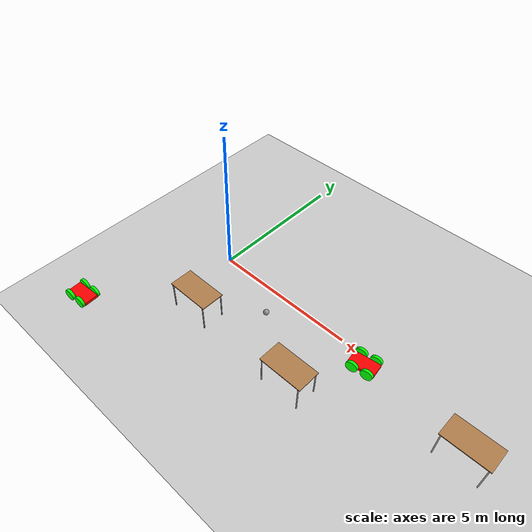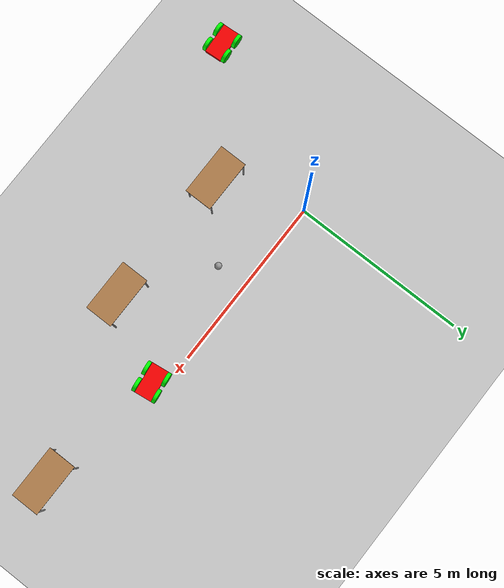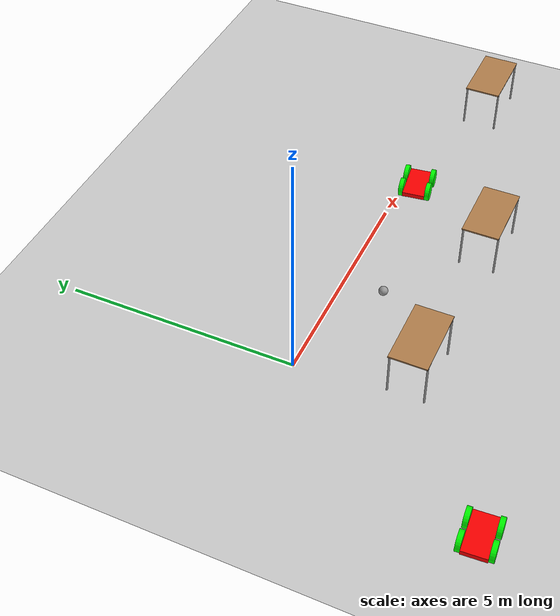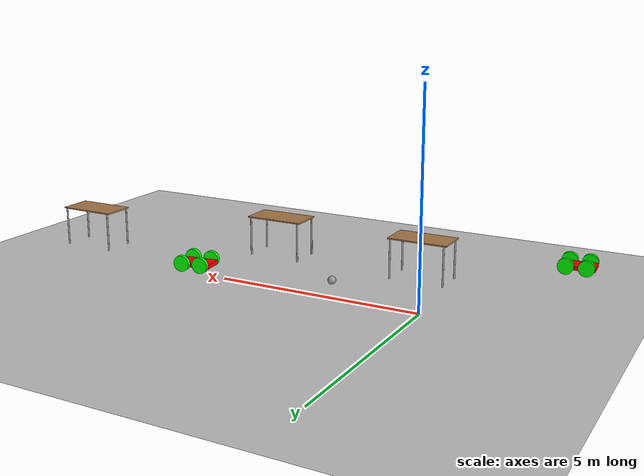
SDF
<sdf version="1.6">
 <world name="default">
  <model name="ground_plane">
   <static>1</static>
   <link name="link">
    <collision name="collision">
     <geometry><plane><normal>0 0 1</normal><size>100 100</size></plane></geometry>
     <surface><friction><ode><mu>100</mu><mu2>50</mu2></ode></friction></surface>
    </collision>
    <visual name="visual">
     <cast_shadows>0</cast_shadows>
     <geometry><plane><normal>0 0 1</normal><size>100 100</size></plane></geometry>
     <material>
      <script><uri>file://media/materials/scripts/gazebo.material</uri><name>Gazebo/Grey</name></script>
     </material>
    </visual>
   </link>
  </model>
  <model name="table">
   <static>1</static>
   <link name="link">
    <collision name="surface">
     <pose>0 0 1 0 -0 0</pose>
     <geometry><box><size>1.5 0.8 0.03</size></box></geometry>
     <surface><friction><ode><mu>0.6</mu><mu2>0.6</mu2></ode></friction></surface>
    </collision>
    <visual name="visual1">
     <pose>0 0 1 0 -0 0</pose>
     <geometry><box><size>1.5 0.8 0.03</size></box></geometry>
     <material>
      <script><uri>file://media/materials/scripts/gazebo.material</uri><name>Gazebo/Wood</name></script>
     </material>
    </visual>
    <collision name="front_left_leg">
     <pose>0.68 0.38 0.5 0 -0 0</pose>
     <geometry><cylinder><radius>0.02</radius><length>1</length></cylinder></geometry>
    </collision>
    <visual name="front_left_leg">
     <pose>0.68 0.38 0.5 0 -0 0</pose>
     <geometry><cylinder><radius>0.02</radius><length>1</length></cylinder></geometry>
     <material>
      <script><uri>file://media/materials/scripts/gazebo.material</uri><name>Gazebo/Grey</name></script>
     </material>
    </visual>
    <collision name="front_right_leg">
     <pose>0.68 -0.38 0.5 0 -0 0</pose>
     <geometry><cylinder><radius>0.02</radius><length>1</length></cylinder></geometry>
    </collision>
    <visual name="front_right_leg">
     <pose>0.68 -0.38 0.5 0 -0 0</pose>
     <geometry><cylinder><radius>0.02</radius><length>1</length></cylinder></geometry>
     <material>
      <script><uri>file://media/materials/scripts/gazebo.material</uri><name>Gazebo/Grey</name></script>
     </material>
    </visual>
    <collision name="back_right_leg">
     <pose>-0.68 -0.38 0.5 0 -0 0</pose>
     <geometry><cylinder><radius>0.02</radius><length>1</length></cylinder></geometry>
    </collision>
    <visual name="back_right_leg">
     <pose>-0.68 -0.38 0.5 0 -0 0</pose>
     <geometry><cylinder><radius>0.02</radius><length>1</length></cylinder></geometry>
     <material>
      <script><uri>file://media/materials/scripts/gazebo.material</uri><name>Gazebo/Grey</name></script>
     </material>
    </visual>
    <collision name="back_left_leg">
     <pose>-0.68 0.38 0.5 0 -0 0</pose>
     <geometry><cylinder><radius>0.02</radius><length>1</length></cylinder></geometry>
    </collision>
    <visual name="back_left_leg">
     <pose>-0.68 0.38 0.5 0 -0 0</pose>
     <geometry><cylinder><radius>0.02</radius><length>1</length></cylinder></geometry>
     <material>
      <script><uri>file://media/materials/scripts/gazebo.material</uri><name>Gazebo/Grey</name></script>
     </material>
    </visual>
   </link>
   <pose>9.67368 -0.862444 0 0 -0 0</pose>
  </model>
  <model name="table_1">
   <static>1</static>
   <link name="link">
    <collision name="surface">
     <pose>0 0 1 0 -0 0</pose>
     <geometry><box><size>1.5 0.8 0.03</size></box></geometry>
     <surface><friction><ode><mu>0.6</mu><mu2>0.6</mu2></ode></friction></surface>
    </collision>
    <visual name="visual1">
     <pose>0 0 1 0 -0 0</pose>
     <geometry><box><size>1.5 0.8 0.03</size></box></geometry>
     <material>
      <script><uri>file://media/materials/scripts/gazebo.material</uri><name>Gazebo/Wood</name></script>
     </material>
    </visual>
    <collision name="front_left_leg">
     <pose>0.68 0.38 0.5 0 -0 0</pose>
     <geometry><cylinder><radius>0.02</radius><length>1</length></cylinder></geometry>
    </collision>
    <visual name="front_left_leg">
     <pose>0.68 0.38 0.5 0 -0 0</pose>
     <geometry><cylinder><radius>0.02</radius><length>1</length></cylinder></geometry>
     <material>
      <script><uri>file://media/materials/scripts/gazebo.material</uri><name>Gazebo/Grey</name></script>
     </material>
    </visual>
    <collision name="front_right_leg">
     <pose>0.68 -0.38 0.5 0 -0 0</pose>
     <geometry><cylinder><radius>0.02</radius><length>1</length></cylinder></geometry>
    </collision>
    <visual name="front_right_leg">
     <pose>0.68 -0.38 0.5 0 -0 0</pose>
     <geometry><cylinder><radius>0.02</radius><length>1</length></cylinder></geometry>
     <material>
      <script><uri>file://media/materials/scripts/gazebo.material</uri><name>Gazebo/Grey</name></script>
     </material>
    </visual>
    <collision name="back_right_leg">
     <pose>-0.68 -0.38 0.5 0 -0 0</pose>
     <geometry><cylinder><radius>0.02</radius><length>1</length></cylinder></geometry>
    </collision>
    <visual name="back_right_leg">
     <pose>-0.68 -0.38 0.5 0 -0 0</pose>
     <geometry><cylinder><radius>0.02</radius><length>1</length></cylinder></geometry>
     <material>
      <script><uri>file://media/materials/scripts/gazebo.material</uri><name>Gazebo/Grey</name></script>
     </material>
    </visual>
    <collision name="back_left_leg">
     <pose>-0.68 0.38 0.5 0 -0 0</pose>
     <geometry><cylinder><radius>0.02</radius><length>1</length></cylinder></geometry>
    </collision>
    <visual name="back_left_leg">
     <pose>-0.68 0.38 0.5 0 -0 0</pose>
     <geometry><cylinder><radius>0.02</radius><length>1</length></cylinder></geometry>
     <material>
      <script><uri>file://media/materials/scripts/gazebo.material</uri><name>Gazebo/Grey</name></script>
     </material>
    </visual>
   </link>
   <pose>0.877917 -2.27792 0 0 -0 0</pose>
  </model>
  <model name="table_2">
   <static>1</static>
   <link name="link">
    <collision name="surface">
     <pose>0 0 1 0 -0 0</pose>
     <geometry><box><size>1.5 0.8 0.03</size></box></geometry>
     <surface><friction><ode><mu>0.6</mu><mu2>0.6</mu2></ode></friction></surface>
    </collision>
    <visual name="visual1">
     <pose>0 0 1 0 -0 0</pose>
     <geometry><box><size>1.5 0.8 0.03</size></box></geometry>
     <material>
      <script><uri>file://media/materials/scripts/gazebo.material</uri><name>Gazebo/Wood</name></script>
     </material>
    </visual>
    <collision name="front_left_leg">
     <pose>0.68 0.38 0.5 0 -0 0</pose>
     <geometry><cylinder><radius>0.02</radius><length>1</length></cylinder></geometry>
    </collision>
    <visual name="front_left_leg">
     <pose>0.68 0.38 0.5 0 -0 0</pose>
     <geometry><cylinder><radius>0.02</radius><length>1</length></cylinder></geometry>
     <material>
      <script><uri>file://media/materials/scripts/gazebo.material</uri><name>Gazebo/Grey</name></script>
     </material>
    </visual>
    <collision name="front_right_leg">
     <pose>0.68 -0.38 0.5 0 -0 0</pose>
     <geometry><cylinder><radius>0.02</radius><length>1</length></cylinder></geometry>
    </collision>
    <visual name="front_right_leg">
     <pose>0.68 -0.38 0.5 0 -0 0</pose>
     <geometry><cylinder><radius>0.02</radius><length>1</length></cylinder></geometry>
     <material>
      <script><uri>file://media/materials/scripts/gazebo.material</uri><name>Gazebo/Grey</name></script>
     </material>
    </visual>
    <collision name="back_right_leg">
     <pose>-0.68 -0.38 0.5 0 -0 0</pose>
     <geometry><cylinder><radius>0.02</radius><length>1</length></cylinder></geometry>
    </collision>
    <visual name="back_right_leg">
     <pose>-0.68 -0.38 0.5 0 -0 0</pose>
     <geometry><cylinder><radius>0.02</radius><length>1</length></cylinder></geometry>
     <material>
      <script><uri>file://media/materials/scripts/gazebo.material</uri><name>Gazebo/Grey</name></script>
     </material>
    </visual>
    <collision name="back_left_leg">
     <pose>-0.68 0.38 0.5 0 -0 0</pose>
     <geometry><cylinder><radius>0.02</radius><length>1</length></cylinder></geometry>
    </collision>
    <visual name="back_left_leg">
     <pose>-0.68 0.38 0.5 0 -0 0</pose>
     <geometry><cylinder><radius>0.02</radius><length>1</length></cylinder></geometry>
     <material>
      <script><uri>file://media/materials/scripts/gazebo.material</uri><name>Gazebo/Grey</name></script>
     </material>
    </visual>
   </link>
   <pose>4.8441 -2.38743 0 0 -0 0</pose>
  </model>
  <model name="newrobo">
   <link name="link_0">
    <pose>-0.020707 0.020259 0.5 0 -0 0</pose>
    <inertial>
     <mass>1</mass>
     <inertia>
      <ixx>0.166667</ixx>
      <ixy>0</ixy>
      <ixz>0</ixz>
      <iyy>0.166667</iyy>
      <iyz>0</iyz>
      <izz>0.166667</izz>
     </inertia>
     <pose>0 0 0.2 0 -0 0</pose>
    </inertial>
    <visual name="visual">
     <geometry><box><size>0.9 0.5 0.1</size></box></geometry>
     <material>
      <lighting>1</lighting>
      <script><uri>file://media/materials/scripts/gazebo.material</uri><name>Gazebo/Grey</name></script>
      <shader type="pixel"><normal_map>__default__</normal_map></shader>
      <ambient>1 0 0 1</ambient>
      <diffuse>1 0 0 1</diffuse>
      <specular>1 0 1 1</specular>
      <emissive>1 0 0 1</emissive>
     </material>
    </visual>
    <collision name="collision">
     <geometry><box><size>0.9 0.5 0.1</size></box></geometry>
     <surface>
      <friction>
       <ode><mu>1</mu><mu2>1</mu2><fdir1>0 0 0</fdir1><slip1>0</slip1><slip2>0</slip2></ode>
       <torsional>
        <coefficient>1</coefficient>
        <patch_radius>0</patch_radius>
        <surface_radius>0</surface_radius>
        <use_patch_radius>1</use_patch_radius>
        <ode><slip>0</slip></ode>
       </torsional>
      </friction>
      <bounce><restitution_coefficient>0</restitution_coefficient><threshold>1e+06</threshold></bounce>
      <contact>
       <collide_without_contact>0</collide_without_contact>
       <collide_without_contact_bitmask>1</collide_without_contact_bitmask>
       <collide_bitmask>1</collide_bitmask>
       <ode>
        <soft_cfm>0</soft_cfm>
        <soft_erp>0.2</soft_erp>
        <kp>1e+13</kp>
        <kd>1</kd>
        <max_vel>0.01</max_vel>
        <min_depth>0</min_depth>
       </ode>
       <bullet>
        <split_impulse>1</split_impulse>
        <split_impulse_penetration_threshold>-0.01</split_impulse_penetration_threshold>
        <soft_cfm>0</soft_cfm>
        <soft_erp>0.2</soft_erp>
        <kp>1e+13</kp>
        <kd>1</kd>
       </bullet>
      </contact>
     </surface>
    </collision>
   </link>
   <link name="link_1">
    <pose>0.229293 -0.27976 0.544996 1.5707 -0 0</pose>
    <inertial>
     <mass>1</mass>
     <inertia><ixx>0.145833</ixx><ixy>0</ixy><ixz>0</ixz><iyy>0.145833</iyy><iyz>0</iyz><izz>0.125</izz></inertia>
    </inertial>
    <visual name="visual">
     <geometry><cylinder><radius>0.2</radius><length>0.1</length></cylinder></geometry>
     <material>
      <lighting>1</lighting>
      <script><uri>file://media/materials/scripts/gazebo.material</uri><name>Gazebo/Grey</name></script>
      <shader type="pixel"><normal_map>__default__</normal_map></shader>
      <ambient>0 1 0 1</ambient>
      <diffuse>0 1 0 1</diffuse>
      <specular>0 1 0 1</specular>
      <emissive>0 1 0 1</emissive>
     </material>
    </visual>
    <collision name="collision">
     <geometry><cylinder><radius>0.2</radius><length>0.1</length></cylinder></geometry>
     <surface>
      <friction>
       <ode><mu>1</mu><mu2>1</mu2><fdir1>0 0 0</fdir1><slip1>0</slip1><slip2>0</slip2></ode>
       <torsional>
        <coefficient>1</coefficient>
        <patch_radius>0</patch_radius>
        <surface_radius>0</surface_radius>
        <use_patch_radius>1</use_patch_radius>
        <ode><slip>0</slip></ode>
       </torsional>
      </friction>
      <bounce><restitution_coefficient>0</restitution_coefficient><threshold>1e+06</threshold></bounce>
      <contact>
       <collide_without_contact>0</collide_without_contact>
       <collide_without_contact_bitmask>1</collide_without_contact_bitmask>
       <collide_bitmask>1</collide_bitmask>
       <ode>
        <soft_cfm>0</soft_cfm>
        <soft_erp>0.2</soft_erp>
        <kp>1e+13</kp>
        <kd>1</kd>
        <max_vel>0.01</max_vel>
        <min_depth>0</min_depth>
       </ode>
       <bullet>
        <split_impulse>1</split_impulse>
        <split_impulse_penetration_threshold>-0.01</split_impulse_penetration_threshold>
        <soft_cfm>0</soft_cfm>
        <soft_erp>0.2</soft_erp>
        <kp>1e+13</kp>
        <kd>1</kd>
       </bullet>
      </contact>
     </surface>
    </collision>
   </link>
   <link name="link_1_clone">
    <pose>0.229293 0.320278 0.545 1.5707 -0 0</pose>
    <inertial>
     <mass>1</mass>
     <inertia><ixx>0.145833</ixx><ixy>0</ixy><ixz>0</ixz><iyy>0.145833</iyy><iyz>0</iyz><izz>0.125</izz></inertia>
    </inertial>
    <visual name="visual">
     <geometry><cylinder><radius>0.2</radius><length>0.1</length></cylinder></geometry>
     <material>
      <lighting>1</lighting>
      <script><uri>file://media/materials/scripts/gazebo.material</uri><name>Gazebo/Grey</name></script>
      <shader type="pixel"><normal_map>__default__</normal_map></shader>
      <ambient>0 1 0 1</ambient>
      <diffuse>0 1 0 1</diffuse>
      <specular>0 1 0 1</specular>
      <emissive>0 1 0 1</emissive>
     </material>
    </visual>
    <collision name="collision">
     <geometry><cylinder><radius>0.2</radius><length>0.1</length></cylinder></geometry>
     <surface>
      <friction>
       <ode><mu>1</mu><mu2>1</mu2><fdir1>0 0 0</fdir1><slip1>0</slip1><slip2>0</slip2></ode>
       <torsional>
        <coefficient>1</coefficient>
        <patch_radius>0</patch_radius>
        <surface_radius>0</surface_radius>
        <use_patch_radius>1</use_patch_radius>
        <ode><slip>0</slip></ode>
       </torsional>
      </friction>
      <bounce><restitution_coefficient>0</restitution_coefficient><threshold>1e+06</threshold></bounce>
      <contact>
       <collide_without_contact>0</collide_without_contact>
       <collide_without_contact_bitmask>1</collide_without_contact_bitmask>
       <collide_bitmask>1</collide_bitmask>
       <ode>
        <soft_cfm>0</soft_cfm>
        <soft_erp>0.2</soft_erp>
        <kp>1e+13</kp>
        <kd>1</kd>
        <max_vel>0.01</max_vel>
        <min_depth>0</min_depth>
       </ode>
       <bullet>
        <split_impulse>1</split_impulse>
        <split_impulse_penetration_threshold>-0.01</split_impulse_penetration_threshold>
        <soft_cfm>0</soft_cfm>
        <soft_erp>0.2</soft_erp>
        <kp>1e+13</kp>
        <kd>1</kd>
       </bullet>
      </contact>
     </surface>
    </collision>
   </link>
   <link name="link_1_clone_0">
    <pose>-0.270707 0.320278 0.545 1.5707 -0 0</pose>
    <inertial>
     <mass>1</mass>
     <inertia><ixx>0.145833</ixx><ixy>0</ixy><ixz>0</ixz><iyy>0.145833</iyy><iyz>0</iyz><izz>0.125</izz></inertia>
    </inertial>
    <visual name="visual">
     <geometry><cylinder><radius>0.2</radius><length>0.1</length></cylinder></geometry>
     <material>
      <lighting>1</lighting>
      <script><uri>file://media/materials/scripts/gazebo.material</uri><name>Gazebo/Grey</name></script>
      <shader type="pixel"><normal_map>__default__</normal_map></shader>
      <ambient>0 1 0 1</ambient>
      <diffuse>0 1 0 1</diffuse>
      <specular>0 1 0 1</specular>
      <emissive>0 1 0 1</emissive>
     </material>
    </visual>
    <collision name="collision">
     <geometry><cylinder><radius>0.2</radius><length>0.1</length></cylinder></geometry>
     <surface>
      <friction>
       <ode><mu>1</mu><mu2>1</mu2><fdir1>0 0 0</fdir1><slip1>0</slip1><slip2>0</slip2></ode>
       <torsional>
        <coefficient>1</coefficient>
        <patch_radius>0</patch_radius>
        <surface_radius>0</surface_radius>
        <use_patch_radius>1</use_patch_radius>
        <ode><slip>0</slip></ode>
       </torsional>
      </friction>
      <bounce><restitution_coefficient>0</restitution_coefficient><threshold>1e+06</threshold></bounce>
      <contact>
       <collide_without_contact>0</collide_without_contact>
       <collide_without_contact_bitmask>1</collide_without_contact_bitmask>
       <collide_bitmask>1</collide_bitmask>
       <ode>
        <soft_cfm>0</soft_cfm>
        <soft_erp>0.2</soft_erp>
        <kp>1e+13</kp>
        <kd>1</kd>
        <max_vel>0.01</max_vel>
        <min_depth>0</min_depth>
       </ode>
       <bullet>
        <split_impulse>1</split_impulse>
        <split_impulse_penetration_threshold>-0.01</split_impulse_penetration_threshold>
        <soft_cfm>0</soft_cfm>
        <soft_erp>0.2</soft_erp>
        <kp>1e+13</kp>
        <kd>1</kd>
       </bullet>
      </contact>
     </surface>
    </collision>
   </link>
   <link name="link_1_clone_1">
    <pose>-0.270707 -0.27976 0.545 1.5707 -0 0</pose>
    <inertial>
     <mass>1</mass>
     <inertia><ixx>0.145833</ixx><ixy>0</ixy><ixz>0</ixz><iyy>0.145833</iyy><iyz>0</iyz><izz>0.125</izz></inertia>
    </inertial>
    <visual name="visual">
     <geometry><cylinder><radius>0.2</radius><length>0.1</length></cylinder></geometry>
     <material>
      <lighting>1</lighting>
      <script><uri>file://media/materials/scripts/gazebo.material</uri><name>Gazebo/Grey</name></script>
      <shader type="pixel"><normal_map>__default__</normal_map></shader>
      <ambient>0 1 0 1</ambient>
      <diffuse>0 1 0 1</diffuse>
      <specular>0 1 0 1</specular>
      <emissive>0 1 0 1</emissive>
     </material>
    </visual>
    <collision name="collision">
     <geometry><cylinder><radius>0.2</radius><length>0.1</length></cylinder></geometry>
     <surface>
      <friction>
       <ode><mu>1</mu><mu2>1</mu2><fdir1>0 0 0</fdir1><slip1>0</slip1><slip2>0</slip2></ode>
       <torsional>
        <coefficient>1</coefficient>
        <patch_radius>0</patch_radius>
        <surface_radius>0</surface_radius>
        <use_patch_radius>1</use_patch_radius>
        <ode><slip>0</slip></ode>
       </torsional>
      </friction>
      <bounce><restitution_coefficient>0</restitution_coefficient><threshold>1e+06</threshold></bounce>
      <contact>
       <collide_without_contact>0</collide_without_contact>
       <collide_without_contact_bitmask>1</collide_without_contact_bitmask>
       <collide_bitmask>1</collide_bitmask>
       <ode>
        <soft_cfm>0</soft_cfm>
        <soft_erp>0.2</soft_erp>
        <kp>1e+13</kp>
        <kd>1</kd>
        <max_vel>0.01</max_vel>
        <min_depth>0</min_depth>
       </ode>
       <bullet>
        <split_impulse>1</split_impulse>
        <split_impulse_penetration_threshold>-0.01</split_impulse_penetration_threshold>
        <soft_cfm>0</soft_cfm>
        <soft_erp>0.2</soft_erp>
        <kp>1e+13</kp>
        <kd>1</kd>
       </bullet>
      </contact>
     </surface>
    </collision>
   </link>
   <joint name="link_0_JOINT_0" type="revolute">
    <parent>link_0</parent>
    <child>link_1</child>
    <axis>
     <xyz>0 0 1</xyz>
     <use_parent_model_frame>0</use_parent_model_frame>
     <limit>
      <lower>-1.79769e+308</lower>
      <upper>1.79769e+308</upper>
      <effort>-1</effort>
      <velocity>-1</velocity>
     </limit>
     <dynamics>
      <spring_reference>0</spring_reference>
      <spring_stiffness>0</spring_stiffness>
      <damping>0</damping>
      <friction>0</friction>
     </dynamics>
    </axis>
    <physics>
     <ode><limit><cfm>0</cfm><erp>0.2</erp></limit><suspension><cfm>0</cfm><erp>0.2</erp></suspension></ode>
    </physics>
   </joint>
   <joint name="link_0_JOINT_1" type="revolute">
    <parent>link_0</parent>
    <child>link_1_clone_1</child>
    <axis>
     <xyz>1 0 0</xyz>
     <use_parent_model_frame>0</use_parent_model_frame>
     <limit>
      <lower>-1.79769e+308</lower>
      <upper>1.79769e+308</upper>
      <effort>-1</effort>
      <velocity>-1</velocity>
     </limit>
     <dynamics>
      <spring_reference>0</spring_reference>
      <spring_stiffness>0</spring_stiffness>
      <damping>0</damping>
      <friction>0</friction>
     </dynamics>
    </axis>
    <physics>
     <ode><limit><cfm>0</cfm><erp>0.2</erp></limit><suspension><cfm>0</cfm><erp>0.2</erp></suspension></ode>
    </physics>
   </joint>
   <joint name="link_0_JOINT_2" type="revolute">
    <parent>link_0</parent>
    <child>link_1_clone</child>
    <axis>
     <xyz>0 0 1</xyz>
     <use_parent_model_frame>0</use_parent_model_frame>
     <limit>
      <lower>-1.79769e+308</lower>
      <upper>1.79769e+308</upper>
      <effort>-1</effort>
      <velocity>-1</velocity>
     </limit>
     <dynamics>
      <spring_reference>0</spring_reference>
      <spring_stiffness>0</spring_stiffness>
      <damping>0</damping>
      <friction>0</friction>
     </dynamics>
    </axis>
    <physics>
     <ode><limit><cfm>0</cfm><erp>0.2</erp></limit><suspension><cfm>0</cfm><erp>0.2</erp></suspension></ode>
    </physics>
   </joint>
   <joint name="link_0_JOINT_4" type="revolute">
    <parent>link_0</parent>
    <child>link_1_clone</child>
    <axis>
     <xyz>0 0 1</xyz>
     <use_parent_model_frame>0</use_parent_model_frame>
     <limit>
      <lower>-1.79769e+308</lower>
      <upper>1.79769e+308</upper>
      <effort>-1</effort>
      <velocity>-1</velocity>
     </limit>
     <dynamics>
      <spring_reference>0</spring_reference>
      <spring_stiffness>0</spring_stiffness>
      <damping>0</damping>
      <friction>0</friction>
     </dynamics>
    </axis>
    <physics>
     <ode><limit><cfm>0</cfm><erp>0.2</erp></limit><suspension><cfm>0</cfm><erp>0.2</erp></suspension></ode>
    </physics>
   </joint>
   <joint name="link_0_JOINT_5" type="revolute">
    <parent>link_0</parent>
    <child>link_1_clone_0</child>
    <axis>
     <xyz>0 0 1</xyz>
     <use_parent_model_frame>0</use_parent_model_frame>
     <limit>
      <lower>-1.79769e+308</lower>
      <upper>1.79769e+308</upper>
      <effort>-1</effort>
      <velocity>-1</velocity>
     </limit>
     <dynamics>
      <spring_reference>0</spring_reference>
      <spring_stiffness>0</spring_stiffness>
      <damping>0</damping>
      <friction>0</friction>
     </dynamics>
    </axis>
    <physics>
     <ode><limit><cfm>0</cfm><erp>0.2</erp></limit><suspension><cfm>0</cfm><erp>0.2</erp></suspension></ode>
    </physics>
   </joint>
   <joint name="link_0_JOINT_6" type="revolute">
    <parent>link_0</parent>
    <child>link_1_clone_1</child>
    <axis>
     <xyz>0 0 1</xyz>
     <use_parent_model_frame>0</use_parent_model_frame>
     <limit>
      <lower>-1.79769e+308</lower>
      <upper>1.79769e+308</upper>
      <effort>-1</effort>
      <velocity>-1</velocity>
     </limit>
     <dynamics>
      <spring_reference>0</spring_reference>
      <spring_stiffness>0</spring_stiffness>
      <damping>0</damping>
      <friction>0</friction>
     </dynamics>
    </axis>
    <physics>
     <ode><limit><cfm>0</cfm><erp>0.2</erp></limit><suspension><cfm>0</cfm><erp>0.2</erp></suspension></ode>
    </physics>
   </joint>
   <joint name="link_0_JOINT_7" type="revolute">
    <parent>link_0</parent>
    <child>link_1</child>
    <axis>
     <xyz>0 0 1</xyz>
     <use_parent_model_frame>0</use_parent_model_frame>
     <limit>
      <lower>-1.79769e+308</lower>
      <upper>1.79769e+308</upper>
      <effort>-1</effort>
      <velocity>-1</velocity>
     </limit>
     <dynamics>
      <spring_reference>0</spring_reference>
      <spring_stiffness>0</spring_stiffness>
      <damping>0</damping>
      <friction>0</friction>
     </dynamics>
    </axis>
    <physics>
     <ode><limit><cfm>0</cfm><erp>0.2</erp></limit><suspension><cfm>0</cfm><erp>0.2</erp></suspension></ode>
    </physics>
   </joint>
   <joint name="link_0_JOINT_8" type="revolute">
    <parent>link_0</parent>
    <child>link_1_clone_1</child>
    <axis>
     <xyz>0 0 1</xyz>
     <use_parent_model_frame>0</use_parent_model_frame>
     <limit>
      <lower>-1.79769e+308</lower>
      <upper>1.79769e+308</upper>
      <effort>-1</effort>
      <velocity>-1</velocity>
     </limit>
     <dynamics>
      <spring_reference>0</spring_reference>
      <spring_stiffness>0</spring_stiffness>
      <damping>0</damping>
      <friction>0</friction>
     </dynamics>
    </axis>
    <physics>
     <ode><limit><cfm>0</cfm><erp>0.2</erp></limit><suspension><cfm>0</cfm><erp>0.2</erp></suspension></ode>
    </physics>
   </joint>
   <static>0</static>
   <pose>6.08888 -0.358677 -0.344993 -4e-06 -3e-06 0.130032</pose>
  </model>
  <model name="newrobo_0">
   <link name="link_0">
    <pose>-0.020707 0.020259 0.5 0 -0 0</pose>
    <inertial>
     <mass>1</mass>
     <inertia>
      <ixx>0.166667</ixx>
      <ixy>0</ixy>
      <ixz>0</ixz>
      <iyy>0.166667</iyy>
      <iyz>0</iyz>
      <izz>0.166667</izz>
     </inertia>
     <pose>0 0 0.2 0 -0 0</pose>
    </inertial>
    <visual name="visual">
     <geometry><box><size>0.9 0.5 0.1</size></box></geometry>
     <material>
      <lighting>1</lighting>
      <script><uri>file://media/materials/scripts/gazebo.material</uri><name>Gazebo/Grey</name></script>
      <shader type="pixel"><normal_map>__default__</normal_map></shader>
      <ambient>1 0 0 1</ambient>
      <diffuse>1 0 0 1</diffuse>
      <specular>1 0 1 1</specular>
      <emissive>1 0 0 1</emissive>
     </material>
    </visual>
    <collision name="collision">
     <geometry><box><size>0.9 0.5 0.1</size></box></geometry>
     <surface>
      <friction>
       <ode><mu>1</mu><mu2>1</mu2><fdir1>0 0 0</fdir1><slip1>0</slip1><slip2>0</slip2></ode>
       <torsional>
        <coefficient>1</coefficient>
        <patch_radius>0</patch_radius>
        <surface_radius>0</surface_radius>
        <use_patch_radius>1</use_patch_radius>
        <ode><slip>0</slip></ode>
       </torsional>
      </friction>
      <bounce><restitution_coefficient>0</restitution_coefficient><threshold>1e+06</threshold></bounce>
      <contact>
       <collide_without_contact>0</collide_without_contact>
       <collide_without_contact_bitmask>1</collide_without_contact_bitmask>
       <collide_bitmask>1</collide_bitmask>
       <ode>
        <soft_cfm>0</soft_cfm>
        <soft_erp>0.2</soft_erp>
        <kp>1e+13</kp>
        <kd>1</kd>
        <max_vel>0.01</max_vel>
        <min_depth>0</min_depth>
       </ode>
       <bullet>
        <split_impulse>1</split_impulse>
        <split_impulse_penetration_threshold>-0.01</split_impulse_penetration_threshold>
        <soft_cfm>0</soft_cfm>
        <soft_erp>0.2</soft_erp>
        <kp>1e+13</kp>
        <kd>1</kd>
       </bullet>
      </contact>
     </surface>
    </collision>
   </link>
   <link name="link_1">
    <pose>0.229293 -0.27976 0.544996 1.5707 -0 0</pose>
    <inertial>
     <mass>1</mass>
     <inertia><ixx>0.145833</ixx><ixy>0</ixy><ixz>0</ixz><iyy>0.145833</iyy><iyz>0</iyz><izz>0.125</izz></inertia>
    </inertial>
    <visual name="visual">
     <geometry><cylinder><radius>0.2</radius><length>0.1</length></cylinder></geometry>
     <material>
      <lighting>1</lighting>
      <script><uri>file://media/materials/scripts/gazebo.material</uri><name>Gazebo/Grey</name></script>
      <shader type="pixel"><normal_map>__default__</normal_map></shader>
      <ambient>0 1 0 1</ambient>
      <diffuse>0 1 0 1</diffuse>
      <specular>0 1 0 1</specular>
      <emissive>0 1 0 1</emissive>
     </material>
    </visual>
    <collision name="collision">
     <geometry><cylinder><radius>0.2</radius><length>0.1</length></cylinder></geometry>
     <surface>
      <friction>
       <ode><mu>1</mu><mu2>1</mu2><fdir1>0 0 0</fdir1><slip1>0</slip1><slip2>0</slip2></ode>
       <torsional>
        <coefficient>1</coefficient>
        <patch_radius>0</patch_radius>
        <surface_radius>0</surface_radius>
        <use_patch_radius>1</use_patch_radius>
        <ode><slip>0</slip></ode>
       </torsional>
      </friction>
      <bounce><restitution_coefficient>0</restitution_coefficient><threshold>1e+06</threshold></bounce>
      <contact>
       <collide_without_contact>0</collide_without_contact>
       <collide_without_contact_bitmask>1</collide_without_contact_bitmask>
       <collide_bitmask>1</collide_bitmask>
       <ode>
        <soft_cfm>0</soft_cfm>
        <soft_erp>0.2</soft_erp>
        <kp>1e+13</kp>
        <kd>1</kd>
        <max_vel>0.01</max_vel>
        <min_depth>0</min_depth>
       </ode>
       <bullet>
        <split_impulse>1</split_impulse>
        <split_impulse_penetration_threshold>-0.01</split_impulse_penetration_threshold>
        <soft_cfm>0</soft_cfm>
        <soft_erp>0.2</soft_erp>
        <kp>1e+13</kp>
        <kd>1</kd>
       </bullet>
      </contact>
     </surface>
    </collision>
   </link>
   <link name="link_1_clone">
    <pose>0.229293 0.320278 0.545 1.5707 -0 0</pose>
    <inertial>
     <mass>1</mass>
     <inertia><ixx>0.145833</ixx><ixy>0</ixy><ixz>0</ixz><iyy>0.145833</iyy><iyz>0</iyz><izz>0.125</izz></inertia>
    </inertial>
    <visual name="visual">
     <geometry><cylinder><radius>0.2</radius><length>0.1</length></cylinder></geometry>
     <material>
      <lighting>1</lighting>
      <script><uri>file://media/materials/scripts/gazebo.material</uri><name>Gazebo/Grey</name></script>
      <shader type="pixel"><normal_map>__default__</normal_map></shader>
      <ambient>0 1 0 1</ambient>
      <diffuse>0 1 0 1</diffuse>
      <specular>0 1 0 1</specular>
      <emissive>0 1 0 1</emissive>
     </material>
    </visual>
    <collision name="collision">
     <geometry><cylinder><radius>0.2</radius><length>0.1</length></cylinder></geometry>
     <surface>
      <friction>
       <ode><mu>1</mu><mu2>1</mu2><fdir1>0 0 0</fdir1><slip1>0</slip1><slip2>0</slip2></ode>
       <torsional>
        <coefficient>1</coefficient>
        <patch_radius>0</patch_radius>
        <surface_radius>0</surface_radius>
        <use_patch_radius>1</use_patch_radius>
        <ode><slip>0</slip></ode>
       </torsional>
      </friction>
      <bounce><restitution_coefficient>0</restitution_coefficient><threshold>1e+06</threshold></bounce>
      <contact>
       <collide_without_contact>0</collide_without_contact>
       <collide_without_contact_bitmask>1</collide_without_contact_bitmask>
       <collide_bitmask>1</collide_bitmask>
       <ode>
        <soft_cfm>0</soft_cfm>
        <soft_erp>0.2</soft_erp>
        <kp>1e+13</kp>
        <kd>1</kd>
        <max_vel>0.01</max_vel>
        <min_depth>0</min_depth>
       </ode>
       <bullet>
        <split_impulse>1</split_impulse>
        <split_impulse_penetration_threshold>-0.01</split_impulse_penetration_threshold>
        <soft_cfm>0</soft_cfm>
        <soft_erp>0.2</soft_erp>
        <kp>1e+13</kp>
        <kd>1</kd>
       </bullet>
      </contact>
     </surface>
    </collision>
   </link>
   <link name="link_1_clone_0">
    <pose>-0.270707 0.320278 0.545 1.5707 -0 0</pose>
    <inertial>
     <mass>1</mass>
     <inertia><ixx>0.145833</ixx><ixy>0</ixy><ixz>0</ixz><iyy>0.145833</iyy><iyz>0</iyz><izz>0.125</izz></inertia>
    </inertial>
    <visual name="visual">
     <geometry><cylinder><radius>0.2</radius><length>0.1</length></cylinder></geometry>
     <material>
      <lighting>1</lighting>
      <script><uri>file://media/materials/scripts/gazebo.material</uri><name>Gazebo/Grey</name></script>
      <shader type="pixel"><normal_map>__default__</normal_map></shader>
      <ambient>0 1 0 1</ambient>
      <diffuse>0 1 0 1</diffuse>
      <specular>0 1 0 1</specular>
      <emissive>0 1 0 1</emissive>
     </material>
    </visual>
    <collision name="collision">
     <geometry><cylinder><radius>0.2</radius><length>0.1</length></cylinder></geometry>
     <surface>
      <friction>
       <ode><mu>1</mu><mu2>1</mu2><fdir1>0 0 0</fdir1><slip1>0</slip1><slip2>0</slip2></ode>
       <torsional>
        <coefficient>1</coefficient>
        <patch_radius>0</patch_radius>
        <surface_radius>0</surface_radius>
        <use_patch_radius>1</use_patch_radius>
        <ode><slip>0</slip></ode>
       </torsional>
      </friction>
      <bounce><restitution_coefficient>0</restitution_coefficient><threshold>1e+06</threshold></bounce>
      <contact>
       <collide_without_contact>0</collide_without_contact>
       <collide_without_contact_bitmask>1</collide_without_contact_bitmask>
       <collide_bitmask>1</collide_bitmask>
       <ode>
        <soft_cfm>0</soft_cfm>
        <soft_erp>0.2</soft_erp>
        <kp>1e+13</kp>
        <kd>1</kd>
        <max_vel>0.01</max_vel>
        <min_depth>0</min_depth>
       </ode>
       <bullet>
        <split_impulse>1</split_impulse>
        <split_impulse_penetration_threshold>-0.01</split_impulse_penetration_threshold>
        <soft_cfm>0</soft_cfm>
        <soft_erp>0.2</soft_erp>
        <kp>1e+13</kp>
        <kd>1</kd>
       </bullet>
      </contact>
     </surface>
    </collision>
   </link>
   <link name="link_1_clone_1">
    <pose>-0.270707 -0.27976 0.545 1.5707 -0 0</pose>
    <inertial>
     <mass>1</mass>
     <inertia><ixx>0.145833</ixx><ixy>0</ixy><ixz>0</ixz><iyy>0.145833</iyy><iyz>0</iyz><izz>0.125</izz></inertia>
    </inertial>
    <visual name="visual">
     <geometry><cylinder><radius>0.2</radius><length>0.1</length></cylinder></geometry>
     <material>
      <lighting>1</lighting>
      <script><uri>file://media/materials/scripts/gazebo.material</uri><name>Gazebo/Grey</name></script>
      <shader type="pixel"><normal_map>__default__</normal_map></shader>
      <ambient>0 1 0 1</ambient>
      <diffuse>0 1 0 1</diffuse>
      <specular>0 1 0 1</specular>
      <emissive>0 1 0 1</emissive>
     </material>
    </visual>
    <collision name="collision">
     <geometry><cylinder><radius>0.2</radius><length>0.1</length></cylinder></geometry>
     <surface>
      <friction>
       <ode><mu>1</mu><mu2>1</mu2><fdir1>0 0 0</fdir1><slip1>0</slip1><slip2>0</slip2></ode>
       <torsional>
        <coefficient>1</coefficient>
        <patch_radius>0</patch_radius>
        <surface_radius>0</surface_radius>
        <use_patch_radius>1</use_patch_radius>
        <ode><slip>0</slip></ode>
       </torsional>
      </friction>
      <bounce><restitution_coefficient>0</restitution_coefficient><threshold>1e+06</threshold></bounce>
      <contact>
       <collide_without_contact>0</collide_without_contact>
       <collide_without_contact_bitmask>1</collide_without_contact_bitmask>
       <collide_bitmask>1</collide_bitmask>
       <ode>
        <soft_cfm>0</soft_cfm>
        <soft_erp>0.2</soft_erp>
        <kp>1e+13</kp>
        <kd>1</kd>
        <max_vel>0.01</max_vel>
        <min_depth>0</min_depth>
       </ode>
       <bullet>
        <split_impulse>1</split_impulse>
        <split_impulse_penetration_threshold>-0.01</split_impulse_penetration_threshold>
        <soft_cfm>0</soft_cfm>
        <soft_erp>0.2</soft_erp>
        <kp>1e+13</kp>
        <kd>1</kd>
       </bullet>
      </contact>
     </surface>
    </collision>
   </link>
   <joint name="link_0_JOINT_0" type="revolute">
    <parent>link_0</parent>
    <child>link_1</child>
    <axis>
     <xyz>0 0 1</xyz>
     <use_parent_model_frame>0</use_parent_model_frame>
     <limit>
      <lower>-1.79769e+308</lower>
      <upper>1.79769e+308</upper>
      <effort>-1</effort>
      <velocity>-1</velocity>
     </limit>
     <dynamics>
      <spring_reference>0</spring_reference>
      <spring_stiffness>0</spring_stiffness>
      <damping>0</damping>
      <friction>0</friction>
     </dynamics>
    </axis>
    <physics>
     <ode><limit><cfm>0</cfm><erp>0.2</erp></limit><suspension><cfm>0</cfm><erp>0.2</erp></suspension></ode>
    </physics>
   </joint>
   <joint name="link_0_JOINT_1" type="revolute">
    <parent>link_0</parent>
    <child>link_1_clone_1</child>
    <axis>
     <xyz>1 0 0</xyz>
     <use_parent_model_frame>0</use_parent_model_frame>
     <limit>
      <lower>-1.79769e+308</lower>
      <upper>1.79769e+308</upper>
      <effort>-1</effort>
      <velocity>-1</velocity>
     </limit>
     <dynamics>
      <spring_reference>0</spring_reference>
      <spring_stiffness>0</spring_stiffness>
      <damping>0</damping>
      <friction>0</friction>
     </dynamics>
    </axis>
    <physics>
     <ode><limit><cfm>0</cfm><erp>0.2</erp></limit><suspension><cfm>0</cfm><erp>0.2</erp></suspension></ode>
    </physics>
   </joint>
   <joint name="link_0_JOINT_2" type="revolute">
    <parent>link_0</parent>
    <child>link_1_clone</child>
    <axis>
     <xyz>0 0 1</xyz>
     <use_parent_model_frame>0</use_parent_model_frame>
     <limit>
      <lower>-1.79769e+308</lower>
      <upper>1.79769e+308</upper>
      <effort>-1</effort>
      <velocity>-1</velocity>
     </limit>
     <dynamics>
      <spring_reference>0</spring_reference>
      <spring_stiffness>0</spring_stiffness>
      <damping>0</damping>
      <friction>0</friction>
     </dynamics>
    </axis>
    <physics>
     <ode><limit><cfm>0</cfm><erp>0.2</erp></limit><suspension><cfm>0</cfm><erp>0.2</erp></suspension></ode>
    </physics>
   </joint>
   <joint name="link_0_JOINT_4" type="revolute">
    <parent>link_0</parent>
    <child>link_1_clone</child>
    <axis>
     <xyz>0 0 1</xyz>
     <use_parent_model_frame>0</use_parent_model_frame>
     <limit>
      <lower>-1.79769e+308</lower>
      <upper>1.79769e+308</upper>
      <effort>-1</effort>
      <velocity>-1</velocity>
     </limit>
     <dynamics>
      <spring_reference>0</spring_reference>
      <spring_stiffness>0</spring_stiffness>
      <damping>0</damping>
      <friction>0</friction>
     </dynamics>
    </axis>
    <physics>
     <ode><limit><cfm>0</cfm><erp>0.2</erp></limit><suspension><cfm>0</cfm><erp>0.2</erp></suspension></ode>
    </physics>
   </joint>
   <joint name="link_0_JOINT_5" type="revolute">
    <parent>link_0</parent>
    <child>link_1_clone_0</child>
    <axis>
     <xyz>0 0 1</xyz>
     <use_parent_model_frame>0</use_parent_model_frame>
     <limit>
      <lower>-1.79769e+308</lower>
      <upper>1.79769e+308</upper>
      <effort>-1</effort>
      <velocity>-1</velocity>
     </limit>
     <dynamics>
      <spring_reference>0</spring_reference>
      <spring_stiffness>0</spring_stiffness>
      <damping>0</damping>
      <friction>0</friction>
     </dynamics>
    </axis>
    <physics>
     <ode><limit><cfm>0</cfm><erp>0.2</erp></limit><suspension><cfm>0</cfm><erp>0.2</erp></suspension></ode>
    </physics>
   </joint>
   <joint name="link_0_JOINT_6" type="revolute">
    <parent>link_0</parent>
    <child>link_1_clone_1</child>
    <axis>
     <xyz>0 0 1</xyz>
     <use_parent_model_frame>0</use_parent_model_frame>
     <limit>
      <lower>-1.79769e+308</lower>
      <upper>1.79769e+308</upper>
      <effort>-1</effort>
      <velocity>-1</velocity>
     </limit>
     <dynamics>
      <spring_reference>0</spring_reference>
      <spring_stiffness>0</spring_stiffness>
      <damping>0</damping>
      <friction>0</friction>
     </dynamics>
    </axis>
    <physics>
     <ode><limit><cfm>0</cfm><erp>0.2</erp></limit><suspension><cfm>0</cfm><erp>0.2</erp></suspension></ode>
    </physics>
   </joint>
   <joint name="link_0_JOINT_7" type="revolute">
    <parent>link_0</parent>
    <child>link_1</child>
    <axis>
     <xyz>0 0 1</xyz>
     <use_parent_model_frame>0</use_parent_model_frame>
     <limit>
      <lower>-1.79769e+308</lower>
      <upper>1.79769e+308</upper>
      <effort>-1</effort>
      <velocity>-1</velocity>
     </limit>
     <dynamics>
      <spring_reference>0</spring_reference>
      <spring_stiffness>0</spring_stiffness>
      <damping>0</damping>
      <friction>0</friction>
     </dynamics>
    </axis>
    <physics>
     <ode><limit><cfm>0</cfm><erp>0.2</erp></limit><suspension><cfm>0</cfm><erp>0.2</erp></suspension></ode>
    </physics>
   </joint>
   <joint name="link_0_JOINT_8" type="revolute">
    <parent>link_0</parent>
    <child>link_1_clone_1</child>
    <axis>
     <xyz>0 0 1</xyz>
     <use_parent_model_frame>0</use_parent_model_frame>
     <limit>
      <lower>-1.79769e+308</lower>
      <upper>1.79769e+308</upper>
      <effort>-1</effort>
      <velocity>-1</velocity>
     </limit>
     <dynamics>
      <spring_reference>0</spring_reference>
      <spring_stiffness>0</spring_stiffness>
      <damping>0</damping>
      <friction>0</friction>
     </dynamics>
    </axis>
    <physics>
     <ode><limit><cfm>0</cfm><erp>0.2</erp></limit><suspension><cfm>0</cfm><erp>0.2</erp></suspension></ode>
    </physics>
   </joint>
   <static>0</static>
   <pose>-2.26577 -4.59516 -0.344993 1e-06 -8e-06 0.067272</pose>
  </model>
  <model name="my_ball">
   <link name="link_0">
    <inertial>
     <mass>1</mass>
     <inertia><ixx>0.1</ixx><ixy>0</ixy><ixz>0</ixz><iyy>0.1</iyy><iyz>0</iyz><izz>0.1</izz></inertia>
    </inertial>
    <visual name="visual">
     <geometry><sphere><radius>0.1</radius></sphere></geometry>
     <material>
      <lighting>1</lighting>
      <script><uri>file://media/materials/scripts/gazebo.material</uri><name>Gazebo/Grey</name></script>
      <shader type="pixel"><normal_map>__default__</normal_map></shader>
      <ambient>1 1 1 1</ambient>
      <diffuse>1 1 1 1</diffuse>
      <specular>1 1 1 1</specular>
      <emissive>1 1 1 1</emissive>
     </material>
    </visual>
    <collision name="collision">
     <geometry><sphere><radius>0.1</radius></sphere></geometry>
     <surface>
      <friction>
       <ode><mu>1</mu><mu2>1</mu2><fdir1>0 0 0</fdir1><slip1>0</slip1><slip2>0</slip2></ode>
       <torsional>
        <coefficient>1</coefficient>
        <patch_radius>0</patch_radius>
        <surface_radius>0</surface_radius>
        <use_patch_radius>1</use_patch_radius>
        <ode><slip>0</slip></ode>
       </torsional>
      </friction>
      <bounce><restitution_coefficient>0</restitution_coefficient><threshold>1e+06</threshold></bounce>
      <contact>
       <collide_without_contact>0</collide_without_contact>
       <collide_without_contact_bitmask>1</collide_without_contact_bitmask>
       <collide_bitmask>1</collide_bitmask>
       <ode>
        <soft_cfm>0</soft_cfm>
        <soft_erp>0.2</soft_erp>
        <kp>1e+13</kp>
        <kd>1</kd>
        <max_vel>0.01</max_vel>
        <min_depth>0</min_depth>
       </ode>
       <bullet>
        <split_impulse>1</split_impulse>
        <split_impulse_penetration_threshold>-0.01</split_impulse_penetration_threshold>
        <soft_cfm>0</soft_cfm>
        <soft_erp>0.2</soft_erp>
        <kp>1e+13</kp>
        <kd>1</kd>
       </bullet>
      </contact>
     </surface>
    </collision>
   </link>
   <static>0</static>
   <pose>2.57921 -0.882573 0.1 0 -0 0</pose>
  </model>
 </world>
</sdf>
